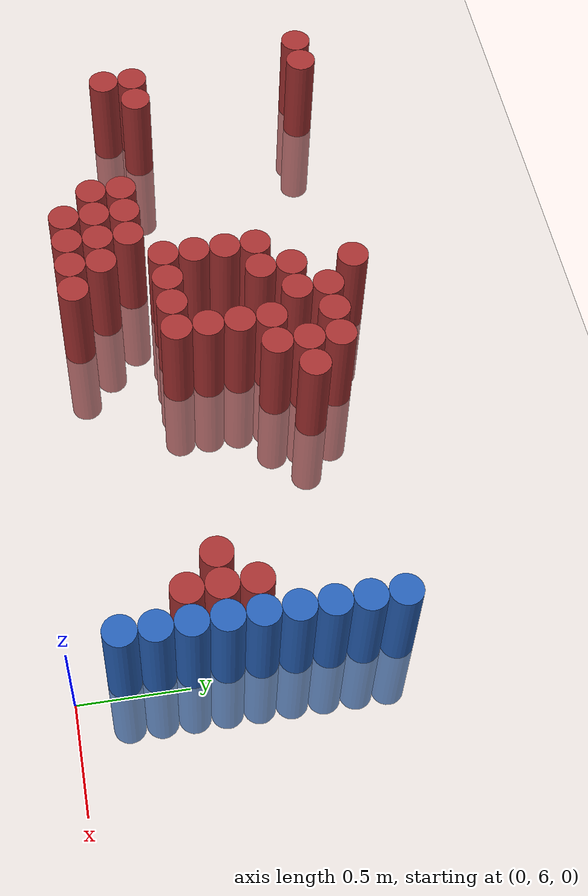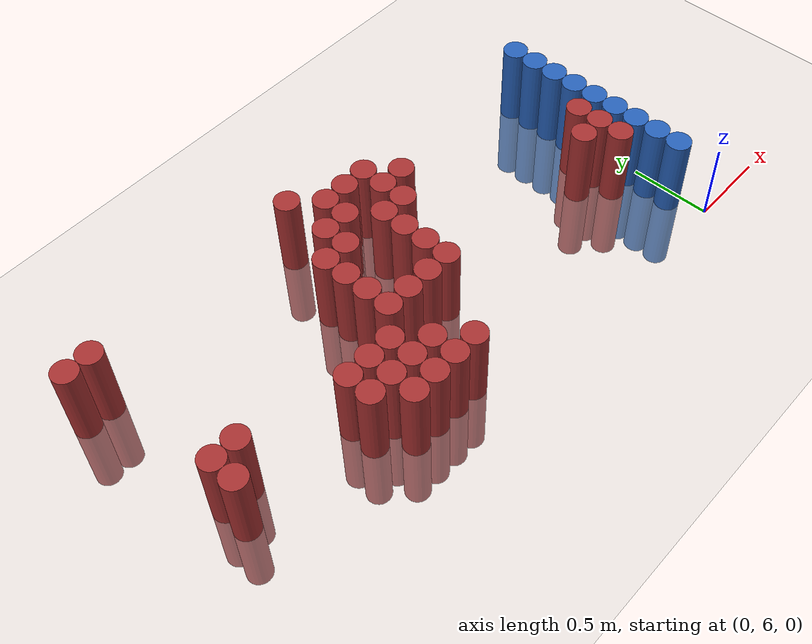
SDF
<sdf version="1.6">
 <world name="default">
  <model name="ground_plane">
   <static>1</static>
   <link name="link">
    <collision name="collision">
     <geometry><plane><normal>0 0 1</normal><size>100 100</size></plane></geometry>
     <surface><friction><ode><mu>100</mu><mu2>50</mu2></ode></friction></surface>
    </collision>
    <visual name="visual">
     <cast_shadows>0</cast_shadows>
     <geometry><plane><normal>0 0 1</normal><size>100 100</size></plane></geometry>
     <material>
      <script><uri>file://media/materials/scripts/gazebo.material</uri><name>Gazebo/Grey</name></script>
     </material>
    </visual>
   </link>
  </model>
  <model name="unit_cylinder_176">
   <static>1</static>
   <pose>-3.375000 7.575000 0.000000 0.000000 0.000000 0.000000</pose>
   <link name="link">
    <inertial>
     <mass>1</mass>
     <inertia><ixx>0.145833</ixx><ixy>0</ixy><ixz>0</ixz><iyy>0.145833</iyy><iyz>0</iyz><izz>0.125</izz></inertia>
    </inertial>
    <collision name="collision">
     <geometry><cylinder><radius>0.075000</radius><length>1</length></cylinder></geometry>
    </collision>
    <visual name="visual">
     <geometry><cylinder><radius>0.075000</radius><length>1</length></cylinder></geometry>
     <material>
      <ambient>0.648000 0.192000 0.192000 1</ambient>
      <diffuse>0.648000 0.192000 0.192000 1</diffuse>
     </material>
     <material>
      <script><name>Gazebo/Grey</name><uri>file://media/materials/scripts/gazebo.material</uri></script>
     </material>
    </visual>
   </link>
  </model>
  <model name="unit_cylinder_181">
   <static>1</static>
   <pose>-3.225000 6.525000 0.000000 0.000000 0.000000 0.000000</pose>
   <link name="link">
    <inertial>
     <mass>1</mass>
     <inertia><ixx>0.145833</ixx><ixy>0</ixy><ixz>0</ixz><iyy>0.145833</iyy><iyz>0</iyz><izz>0.125</izz></inertia>
    </inertial>
    <collision name="collision">
     <geometry><cylinder><radius>0.075000</radius><length>1</length></cylinder></geometry>
    </collision>
    <visual name="visual">
     <geometry><cylinder><radius>0.075000</radius><length>1</length></cylinder></geometry>
     <material>
      <ambient>0.648000 0.192000 0.192000 1</ambient>
      <diffuse>0.648000 0.192000 0.192000 1</diffuse>
     </material>
     <material>
      <script><name>Gazebo/Grey</name><uri>file://media/materials/scripts/gazebo.material</uri></script>
     </material>
    </visual>
   </link>
  </model>
  <model name="unit_cylinder_182">
   <static>1</static>
   <pose>-3.225000 6.675000 0.000000 0.000000 0.000000 0.000000</pose>
   <link name="link">
    <inertial>
     <mass>1</mass>
     <inertia><ixx>0.145833</ixx><ixy>0</ixy><ixz>0</ixz><iyy>0.145833</iyy><iyz>0</iyz><izz>0.125</izz></inertia>
    </inertial>
    <collision name="collision">
     <geometry><cylinder><radius>0.075000</radius><length>1</length></cylinder></geometry>
    </collision>
    <visual name="visual">
     <geometry><cylinder><radius>0.075000</radius><length>1</length></cylinder></geometry>
     <material>
      <ambient>0.648000 0.192000 0.192000 1</ambient>
      <diffuse>0.648000 0.192000 0.192000 1</diffuse>
     </material>
     <material>
      <script><name>Gazebo/Grey</name><uri>file://media/materials/scripts/gazebo.material</uri></script>
     </material>
    </visual>
   </link>
  </model>
  <model name="unit_cylinder_183">
   <static>1</static>
   <pose>-3.225000 7.575000 0.000000 0.000000 0.000000 0.000000</pose>
   <link name="link">
    <inertial>
     <mass>1</mass>
     <inertia><ixx>0.145833</ixx><ixy>0</ixy><ixz>0</ixz><iyy>0.145833</iyy><iyz>0</iyz><izz>0.125</izz></inertia>
    </inertial>
    <collision name="collision">
     <geometry><cylinder><radius>0.075000</radius><length>1</length></cylinder></geometry>
    </collision>
    <visual name="visual">
     <geometry><cylinder><radius>0.075000</radius><length>1</length></cylinder></geometry>
     <material>
      <ambient>0.648000 0.192000 0.192000 1</ambient>
      <diffuse>0.648000 0.192000 0.192000 1</diffuse>
     </material>
     <material>
      <script><name>Gazebo/Grey</name><uri>file://media/materials/scripts/gazebo.material</uri></script>
     </material>
    </visual>
   </link>
  </model>
  <model name="unit_cylinder_185">
   <static>1</static>
   <pose>-3.075000 6.675000 0.000000 0.000000 0.000000 0.000000</pose>
   <link name="link">
    <inertial>
     <mass>1</mass>
     <inertia><ixx>0.145833</ixx><ixy>0</ixy><ixz>0</ixz><iyy>0.145833</iyy><iyz>0</iyz><izz>0.125</izz></inertia>
    </inertial>
    <collision name="collision">
     <geometry><cylinder><radius>0.075000</radius><length>1</length></cylinder></geometry>
    </collision>
    <visual name="visual">
     <geometry><cylinder><radius>0.075000</radius><length>1</length></cylinder></geometry>
     <material>
      <ambient>0.648000 0.192000 0.192000 1</ambient>
      <diffuse>0.648000 0.192000 0.192000 1</diffuse>
     </material>
     <material>
      <script><name>Gazebo/Grey</name><uri>file://media/materials/scripts/gazebo.material</uri></script>
     </material>
    </visual>
   </link>
  </model>
  <model name="unit_cylinder_190">
   <static>1</static>
   <pose>-2.475000 6.375000 0.000000 0.000000 0.000000 0.000000</pose>
   <link name="link">
    <inertial>
     <mass>1</mass>
     <inertia><ixx>0.145833</ixx><ixy>0</ixy><ixz>0</ixz><iyy>0.145833</iyy><iyz>0</iyz><izz>0.125</izz></inertia>
    </inertial>
    <collision name="collision">
     <geometry><cylinder><radius>0.075000</radius><length>1</length></cylinder></geometry>
    </collision>
    <visual name="visual">
     <geometry><cylinder><radius>0.075000</radius><length>1</length></cylinder></geometry>
     <material>
      <ambient>0.648000 0.192000 0.192000 1</ambient>
      <diffuse>0.648000 0.192000 0.192000 1</diffuse>
     </material>
     <material>
      <script><name>Gazebo/Grey</name><uri>file://media/materials/scripts/gazebo.material</uri></script>
     </material>
    </visual>
   </link>
  </model>
  <model name="unit_cylinder_191">
   <static>1</static>
   <pose>-2.475000 6.525000 0.000000 0.000000 0.000000 0.000000</pose>
   <link name="link">
    <inertial>
     <mass>1</mass>
     <inertia><ixx>0.145833</ixx><ixy>0</ixy><ixz>0</ixz><iyy>0.145833</iyy><iyz>0</iyz><izz>0.125</izz></inertia>
    </inertial>
    <collision name="collision">
     <geometry><cylinder><radius>0.075000</radius><length>1</length></cylinder></geometry>
    </collision>
    <visual name="visual">
     <geometry><cylinder><radius>0.075000</radius><length>1</length></cylinder></geometry>
     <material>
      <ambient>0.648000 0.192000 0.192000 1</ambient>
      <diffuse>0.648000 0.192000 0.192000 1</diffuse>
     </material>
     <material>
      <script><name>Gazebo/Grey</name><uri>file://media/materials/scripts/gazebo.material</uri></script>
     </material>
    </visual>
   </link>
  </model>
  <model name="unit_cylinder_196">
   <static>1</static>
   <pose>-2.325000 6.225000 0.000000 0.000000 0.000000 0.000000</pose>
   <link name="link">
    <inertial>
     <mass>1</mass>
     <inertia><ixx>0.145833</ixx><ixy>0</ixy><ixz>0</ixz><iyy>0.145833</iyy><iyz>0</iyz><izz>0.125</izz></inertia>
    </inertial>
    <collision name="collision">
     <geometry><cylinder><radius>0.075000</radius><length>1</length></cylinder></geometry>
    </collision>
    <visual name="visual">
     <geometry><cylinder><radius>0.075000</radius><length>1</length></cylinder></geometry>
     <material>
      <ambient>0.648000 0.192000 0.192000 1</ambient>
      <diffuse>0.648000 0.192000 0.192000 1</diffuse>
     </material>
     <material>
      <script><name>Gazebo/Grey</name><uri>file://media/materials/scripts/gazebo.material</uri></script>
     </material>
    </visual>
   </link>
  </model>
  <model name="unit_cylinder_197">
   <static>1</static>
   <pose>-2.325000 6.375000 0.000000 0.000000 0.000000 0.000000</pose>
   <link name="link">
    <inertial>
     <mass>1</mass>
     <inertia><ixx>0.145833</ixx><ixy>0</ixy><ixz>0</ixz><iyy>0.145833</iyy><iyz>0</iyz><izz>0.125</izz></inertia>
    </inertial>
    <collision name="collision">
     <geometry><cylinder><radius>0.075000</radius><length>1</length></cylinder></geometry>
    </collision>
    <visual name="visual">
     <geometry><cylinder><radius>0.075000</radius><length>1</length></cylinder></geometry>
     <material>
      <ambient>0.648000 0.192000 0.192000 1</ambient>
      <diffuse>0.648000 0.192000 0.192000 1</diffuse>
     </material>
     <material>
      <script><name>Gazebo/Grey</name><uri>file://media/materials/scripts/gazebo.material</uri></script>
     </material>
    </visual>
   </link>
  </model>
  <model name="unit_cylinder_198">
   <static>1</static>
   <pose>-2.325000 6.525000 0.000000 0.000000 0.000000 0.000000</pose>
   <link name="link">
    <inertial>
     <mass>1</mass>
     <inertia><ixx>0.145833</ixx><ixy>0</ixy><ixz>0</ixz><iyy>0.145833</iyy><iyz>0</iyz><izz>0.125</izz></inertia>
    </inertial>
    <collision name="collision">
     <geometry><cylinder><radius>0.075000</radius><length>1</length></cylinder></geometry>
    </collision>
    <visual name="visual">
     <geometry><cylinder><radius>0.075000</radius><length>1</length></cylinder></geometry>
     <material>
      <ambient>0.648000 0.192000 0.192000 1</ambient>
      <diffuse>0.648000 0.192000 0.192000 1</diffuse>
     </material>
     <material>
      <script><name>Gazebo/Grey</name><uri>file://media/materials/scripts/gazebo.material</uri></script>
     </material>
    </visual>
   </link>
  </model>
  <model name="unit_cylinder_206">
   <static>1</static>
   <pose>-2.175000 6.225000 0.000000 0.000000 0.000000 0.000000</pose>
   <link name="link">
    <inertial>
     <mass>1</mass>
     <inertia><ixx>0.145833</ixx><ixy>0</ixy><ixz>0</ixz><iyy>0.145833</iyy><iyz>0</iyz><izz>0.125</izz></inertia>
    </inertial>
    <collision name="collision">
     <geometry><cylinder><radius>0.075000</radius><length>1</length></cylinder></geometry>
    </collision>
    <visual name="visual">
     <geometry><cylinder><radius>0.075000</radius><length>1</length></cylinder></geometry>
     <material>
      <ambient>0.648000 0.192000 0.192000 1</ambient>
      <diffuse>0.648000 0.192000 0.192000 1</diffuse>
     </material>
     <material>
      <script><name>Gazebo/Grey</name><uri>file://media/materials/scripts/gazebo.material</uri></script>
     </material>
    </visual>
   </link>
  </model>
  <model name="unit_cylinder_207">
   <static>1</static>
   <pose>-2.175000 6.375000 0.000000 0.000000 0.000000 0.000000</pose>
   <link name="link">
    <inertial>
     <mass>1</mass>
     <inertia><ixx>0.145833</ixx><ixy>0</ixy><ixz>0</ixz><iyy>0.145833</iyy><iyz>0</iyz><izz>0.125</izz></inertia>
    </inertial>
    <collision name="collision">
     <geometry><cylinder><radius>0.075000</radius><length>1</length></cylinder></geometry>
    </collision>
    <visual name="visual">
     <geometry><cylinder><radius>0.075000</radius><length>1</length></cylinder></geometry>
     <material>
      <ambient>0.648000 0.192000 0.192000 1</ambient>
      <diffuse>0.648000 0.192000 0.192000 1</diffuse>
     </material>
     <material>
      <script><name>Gazebo/Grey</name><uri>file://media/materials/scripts/gazebo.material</uri></script>
     </material>
    </visual>
   </link>
  </model>
  <model name="unit_cylinder_208">
   <static>1</static>
   <pose>-2.175000 6.525000 0.000000 0.000000 0.000000 0.000000</pose>
   <link name="link">
    <inertial>
     <mass>1</mass>
     <inertia><ixx>0.145833</ixx><ixy>0</ixy><ixz>0</ixz><iyy>0.145833</iyy><iyz>0</iyz><izz>0.125</izz></inertia>
    </inertial>
    <collision name="collision">
     <geometry><cylinder><radius>0.075000</radius><length>1</length></cylinder></geometry>
    </collision>
    <visual name="visual">
     <geometry><cylinder><radius>0.075000</radius><length>1</length></cylinder></geometry>
     <material>
      <ambient>0.648000 0.192000 0.192000 1</ambient>
      <diffuse>0.648000 0.192000 0.192000 1</diffuse>
     </material>
     <material>
      <script><name>Gazebo/Grey</name><uri>file://media/materials/scripts/gazebo.material</uri></script>
     </material>
    </visual>
   </link>
  </model>
  <model name="unit_cylinder_213">
   <static>1</static>
   <pose>-2.025000 6.225000 0.000000 0.000000 0.000000 0.000000</pose>
   <link name="link">
    <inertial>
     <mass>1</mass>
     <inertia><ixx>0.145833</ixx><ixy>0</ixy><ixz>0</ixz><iyy>0.145833</iyy><iyz>0</iyz><izz>0.125</izz></inertia>
    </inertial>
    <collision name="collision">
     <geometry><cylinder><radius>0.075000</radius><length>1</length></cylinder></geometry>
    </collision>
    <visual name="visual">
     <geometry><cylinder><radius>0.075000</radius><length>1</length></cylinder></geometry>
     <material>
      <ambient>0.648000 0.192000 0.192000 1</ambient>
      <diffuse>0.648000 0.192000 0.192000 1</diffuse>
     </material>
     <material>
      <script><name>Gazebo/Grey</name><uri>file://media/materials/scripts/gazebo.material</uri></script>
     </material>
    </visual>
   </link>
  </model>
  <model name="unit_cylinder_214">
   <static>1</static>
   <pose>-2.025000 6.375000 0.000000 0.000000 0.000000 0.000000</pose>
   <link name="link">
    <inertial>
     <mass>1</mass>
     <inertia><ixx>0.145833</ixx><ixy>0</ixy><ixz>0</ixz><iyy>0.145833</iyy><iyz>0</iyz><izz>0.125</izz></inertia>
    </inertial>
    <collision name="collision">
     <geometry><cylinder><radius>0.075000</radius><length>1</length></cylinder></geometry>
    </collision>
    <visual name="visual">
     <geometry><cylinder><radius>0.075000</radius><length>1</length></cylinder></geometry>
     <material>
      <ambient>0.648000 0.192000 0.192000 1</ambient>
      <diffuse>0.648000 0.192000 0.192000 1</diffuse>
     </material>
     <material>
      <script><name>Gazebo/Grey</name><uri>file://media/materials/scripts/gazebo.material</uri></script>
     </material>
    </visual>
   </link>
  </model>
  <model name="unit_cylinder_215">
   <static>1</static>
   <pose>-2.025000 6.675000 0.000000 0.000000 0.000000 0.000000</pose>
   <link name="link">
    <inertial>
     <mass>1</mass>
     <inertia><ixx>0.145833</ixx><ixy>0</ixy><ixz>0</ixz><iyy>0.145833</iyy><iyz>0</iyz><izz>0.125</izz></inertia>
    </inertial>
    <collision name="collision">
     <geometry><cylinder><radius>0.075000</radius><length>1</length></cylinder></geometry>
    </collision>
    <visual name="visual">
     <geometry><cylinder><radius>0.075000</radius><length>1</length></cylinder></geometry>
     <material>
      <ambient>0.648000 0.192000 0.192000 1</ambient>
      <diffuse>0.648000 0.192000 0.192000 1</diffuse>
     </material>
     <material>
      <script><name>Gazebo/Grey</name><uri>file://media/materials/scripts/gazebo.material</uri></script>
     </material>
    </visual>
   </link>
  </model>
  <model name="unit_cylinder_216">
   <static>1</static>
   <pose>-2.025000 6.825000 0.000000 0.000000 0.000000 0.000000</pose>
   <link name="link">
    <inertial>
     <mass>1</mass>
     <inertia><ixx>0.145833</ixx><ixy>0</ixy><ixz>0</ixz><iyy>0.145833</iyy><iyz>0</iyz><izz>0.125</izz></inertia>
    </inertial>
    <collision name="collision">
     <geometry><cylinder><radius>0.075000</radius><length>1</length></cylinder></geometry>
    </collision>
    <visual name="visual">
     <geometry><cylinder><radius>0.075000</radius><length>1</length></cylinder></geometry>
     <material>
      <ambient>0.648000 0.192000 0.192000 1</ambient>
      <diffuse>0.648000 0.192000 0.192000 1</diffuse>
     </material>
     <material>
      <script><name>Gazebo/Grey</name><uri>file://media/materials/scripts/gazebo.material</uri></script>
     </material>
    </visual>
   </link>
  </model>
  <model name="unit_cylinder_217">
   <static>1</static>
   <pose>-2.025000 6.975000 0.000000 0.000000 0.000000 0.000000</pose>
   <link name="link">
    <inertial>
     <mass>1</mass>
     <inertia><ixx>0.145833</ixx><ixy>0</ixy><ixz>0</ixz><iyy>0.145833</iyy><iyz>0</iyz><izz>0.125</izz></inertia>
    </inertial>
    <collision name="collision">
     <geometry><cylinder><radius>0.075000</radius><length>1</length></cylinder></geometry>
    </collision>
    <visual name="visual">
     <geometry><cylinder><radius>0.075000</radius><length>1</length></cylinder></geometry>
     <material>
      <ambient>0.648000 0.192000 0.192000 1</ambient>
      <diffuse>0.648000 0.192000 0.192000 1</diffuse>
     </material>
     <material>
      <script><name>Gazebo/Grey</name><uri>file://media/materials/scripts/gazebo.material</uri></script>
     </material>
    </visual>
   </link>
  </model>
  <model name="unit_cylinder_218">
   <static>1</static>
   <pose>-2.025000 7.125000 0.000000 0.000000 0.000000 0.000000</pose>
   <link name="link">
    <inertial>
     <mass>1</mass>
     <inertia><ixx>0.145833</ixx><ixy>0</ixy><ixz>0</ixz><iyy>0.145833</iyy><iyz>0</iyz><izz>0.125</izz></inertia>
    </inertial>
    <collision name="collision">
     <geometry><cylinder><radius>0.075000</radius><length>1</length></cylinder></geometry>
    </collision>
    <visual name="visual">
     <geometry><cylinder><radius>0.075000</radius><length>1</length></cylinder></geometry>
     <material>
      <ambient>0.648000 0.192000 0.192000 1</ambient>
      <diffuse>0.648000 0.192000 0.192000 1</diffuse>
     </material>
     <material>
      <script><name>Gazebo/Grey</name><uri>file://media/materials/scripts/gazebo.material</uri></script>
     </material>
    </visual>
   </link>
  </model>
  <model name="unit_cylinder_221">
   <static>1</static>
   <pose>-1.875000 6.225000 0.000000 0.000000 0.000000 0.000000</pose>
   <link name="link">
    <inertial>
     <mass>1</mass>
     <inertia><ixx>0.145833</ixx><ixy>0</ixy><ixz>0</ixz><iyy>0.145833</iyy><iyz>0</iyz><izz>0.125</izz></inertia>
    </inertial>
    <collision name="collision">
     <geometry><cylinder><radius>0.075000</radius><length>1</length></cylinder></geometry>
    </collision>
    <visual name="visual">
     <geometry><cylinder><radius>0.075000</radius><length>1</length></cylinder></geometry>
     <material>
      <ambient>0.648000 0.192000 0.192000 1</ambient>
      <diffuse>0.648000 0.192000 0.192000 1</diffuse>
     </material>
     <material>
      <script><name>Gazebo/Grey</name><uri>file://media/materials/scripts/gazebo.material</uri></script>
     </material>
    </visual>
   </link>
  </model>
  <model name="unit_cylinder_222">
   <static>1</static>
   <pose>-1.875000 6.675000 0.000000 0.000000 0.000000 0.000000</pose>
   <link name="link">
    <inertial>
     <mass>1</mass>
     <inertia><ixx>0.145833</ixx><ixy>0</ixy><ixz>0</ixz><iyy>0.145833</iyy><iyz>0</iyz><izz>0.125</izz></inertia>
    </inertial>
    <collision name="collision">
     <geometry><cylinder><radius>0.075000</radius><length>1</length></cylinder></geometry>
    </collision>
    <visual name="visual">
     <geometry><cylinder><radius>0.075000</radius><length>1</length></cylinder></geometry>
     <material>
      <ambient>0.648000 0.192000 0.192000 1</ambient>
      <diffuse>0.648000 0.192000 0.192000 1</diffuse>
     </material>
     <material>
      <script><name>Gazebo/Grey</name><uri>file://media/materials/scripts/gazebo.material</uri></script>
     </material>
    </visual>
   </link>
  </model>
  <model name="unit_cylinder_223">
   <static>1</static>
   <pose>-1.875000 7.125000 0.000000 0.000000 0.000000 0.000000</pose>
   <link name="link">
    <inertial>
     <mass>1</mass>
     <inertia><ixx>0.145833</ixx><ixy>0</ixy><ixz>0</ixz><iyy>0.145833</iyy><iyz>0</iyz><izz>0.125</izz></inertia>
    </inertial>
    <collision name="collision">
     <geometry><cylinder><radius>0.075000</radius><length>1</length></cylinder></geometry>
    </collision>
    <visual name="visual">
     <geometry><cylinder><radius>0.075000</radius><length>1</length></cylinder></geometry>
     <material>
      <ambient>0.648000 0.192000 0.192000 1</ambient>
      <diffuse>0.648000 0.192000 0.192000 1</diffuse>
     </material>
     <material>
      <script><name>Gazebo/Grey</name><uri>file://media/materials/scripts/gazebo.material</uri></script>
     </material>
    </visual>
   </link>
  </model>
  <model name="unit_cylinder_224">
   <static>1</static>
   <pose>-1.875000 7.275000 0.000000 0.000000 0.000000 0.000000</pose>
   <link name="link">
    <inertial>
     <mass>1</mass>
     <inertia><ixx>0.145833</ixx><ixy>0</ixy><ixz>0</ixz><iyy>0.145833</iyy><iyz>0</iyz><izz>0.125</izz></inertia>
    </inertial>
    <collision name="collision">
     <geometry><cylinder><radius>0.075000</radius><length>1</length></cylinder></geometry>
    </collision>
    <visual name="visual">
     <geometry><cylinder><radius>0.075000</radius><length>1</length></cylinder></geometry>
     <material>
      <ambient>0.648000 0.192000 0.192000 1</ambient>
      <diffuse>0.648000 0.192000 0.192000 1</diffuse>
     </material>
     <material>
      <script><name>Gazebo/Grey</name><uri>file://media/materials/scripts/gazebo.material</uri></script>
     </material>
    </visual>
   </link>
  </model>
  <model name="unit_cylinder_225">
   <static>1</static>
   <pose>-1.875000 7.575000 0.000000 0.000000 0.000000 0.000000</pose>
   <link name="link">
    <inertial>
     <mass>1</mass>
     <inertia><ixx>0.145833</ixx><ixy>0</ixy><ixz>0</ixz><iyy>0.145833</iyy><iyz>0</iyz><izz>0.125</izz></inertia>
    </inertial>
    <collision name="collision">
     <geometry><cylinder><radius>0.075000</radius><length>1</length></cylinder></geometry>
    </collision>
    <visual name="visual">
     <geometry><cylinder><radius>0.075000</radius><length>1</length></cylinder></geometry>
     <material>
      <ambient>0.648000 0.192000 0.192000 1</ambient>
      <diffuse>0.648000 0.192000 0.192000 1</diffuse>
     </material>
     <material>
      <script><name>Gazebo/Grey</name><uri>file://media/materials/scripts/gazebo.material</uri></script>
     </material>
    </visual>
   </link>
  </model>
  <model name="unit_cylinder_226">
   <static>1</static>
   <pose>-1.725000 6.675000 0.000000 0.000000 0.000000 0.000000</pose>
   <link name="link">
    <inertial>
     <mass>1</mass>
     <inertia><ixx>0.145833</ixx><ixy>0</ixy><ixz>0</ixz><iyy>0.145833</iyy><iyz>0</iyz><izz>0.125</izz></inertia>
    </inertial>
    <collision name="collision">
     <geometry><cylinder><radius>0.075000</radius><length>1</length></cylinder></geometry>
    </collision>
    <visual name="visual">
     <geometry><cylinder><radius>0.075000</radius><length>1</length></cylinder></geometry>
     <material>
      <ambient>0.648000 0.192000 0.192000 1</ambient>
      <diffuse>0.648000 0.192000 0.192000 1</diffuse>
     </material>
     <material>
      <script><name>Gazebo/Grey</name><uri>file://media/materials/scripts/gazebo.material</uri></script>
     </material>
    </visual>
   </link>
  </model>
  <model name="unit_cylinder_227">
   <static>1</static>
   <pose>-1.725000 7.275000 0.000000 0.000000 0.000000 0.000000</pose>
   <link name="link">
    <inertial>
     <mass>1</mass>
     <inertia><ixx>0.145833</ixx><ixy>0</ixy><ixz>0</ixz><iyy>0.145833</iyy><iyz>0</iyz><izz>0.125</izz></inertia>
    </inertial>
    <collision name="collision">
     <geometry><cylinder><radius>0.075000</radius><length>1</length></cylinder></geometry>
    </collision>
    <visual name="visual">
     <geometry><cylinder><radius>0.075000</radius><length>1</length></cylinder></geometry>
     <material>
      <ambient>0.648000 0.192000 0.192000 1</ambient>
      <diffuse>0.648000 0.192000 0.192000 1</diffuse>
     </material>
     <material>
      <script><name>Gazebo/Grey</name><uri>file://media/materials/scripts/gazebo.material</uri></script>
     </material>
    </visual>
   </link>
  </model>
  <model name="unit_cylinder_228">
   <static>1</static>
   <pose>-1.725000 7.425000 0.000000 0.000000 0.000000 0.000000</pose>
   <link name="link">
    <inertial>
     <mass>1</mass>
     <inertia><ixx>0.145833</ixx><ixy>0</ixy><ixz>0</ixz><iyy>0.145833</iyy><iyz>0</iyz><izz>0.125</izz></inertia>
    </inertial>
    <collision name="collision">
     <geometry><cylinder><radius>0.075000</radius><length>1</length></cylinder></geometry>
    </collision>
    <visual name="visual">
     <geometry><cylinder><radius>0.075000</radius><length>1</length></cylinder></geometry>
     <material>
      <ambient>0.648000 0.192000 0.192000 1</ambient>
      <diffuse>0.648000 0.192000 0.192000 1</diffuse>
     </material>
     <material>
      <script><name>Gazebo/Grey</name><uri>file://media/materials/scripts/gazebo.material</uri></script>
     </material>
    </visual>
   </link>
  </model>
  <model name="unit_cylinder_229">
   <static>1</static>
   <pose>-1.575000 6.675000 0.000000 0.000000 0.000000 0.000000</pose>
   <link name="link">
    <inertial>
     <mass>1</mass>
     <inertia><ixx>0.145833</ixx><ixy>0</ixy><ixz>0</ixz><iyy>0.145833</iyy><iyz>0</iyz><izz>0.125</izz></inertia>
    </inertial>
    <collision name="collision">
     <geometry><cylinder><radius>0.075000</radius><length>1</length></cylinder></geometry>
    </collision>
    <visual name="visual">
     <geometry><cylinder><radius>0.075000</radius><length>1</length></cylinder></geometry>
     <material>
      <ambient>0.648000 0.192000 0.192000 1</ambient>
      <diffuse>0.648000 0.192000 0.192000 1</diffuse>
     </material>
     <material>
      <script><name>Gazebo/Grey</name><uri>file://media/materials/scripts/gazebo.material</uri></script>
     </material>
    </visual>
   </link>
  </model>
  <model name="unit_cylinder_230">
   <static>1</static>
   <pose>-1.575000 6.825000 0.000000 0.000000 0.000000 0.000000</pose>
   <link name="link">
    <inertial>
     <mass>1</mass>
     <inertia><ixx>0.145833</ixx><ixy>0</ixy><ixz>0</ixz><iyy>0.145833</iyy><iyz>0</iyz><izz>0.125</izz></inertia>
    </inertial>
    <collision name="collision">
     <geometry><cylinder><radius>0.075000</radius><length>1</length></cylinder></geometry>
    </collision>
    <visual name="visual">
     <geometry><cylinder><radius>0.075000</radius><length>1</length></cylinder></geometry>
     <material>
      <ambient>0.648000 0.192000 0.192000 1</ambient>
      <diffuse>0.648000 0.192000 0.192000 1</diffuse>
     </material>
     <material>
      <script><name>Gazebo/Grey</name><uri>file://media/materials/scripts/gazebo.material</uri></script>
     </material>
    </visual>
   </link>
  </model>
  <model name="unit_cylinder_231">
   <static>1</static>
   <pose>-1.575000 6.975000 0.000000 0.000000 0.000000 0.000000</pose>
   <link name="link">
    <inertial>
     <mass>1</mass>
     <inertia><ixx>0.145833</ixx><ixy>0</ixy><ixz>0</ixz><iyy>0.145833</iyy><iyz>0</iyz><izz>0.125</izz></inertia>
    </inertial>
    <collision name="collision">
     <geometry><cylinder><radius>0.075000</radius><length>1</length></cylinder></geometry>
    </collision>
    <visual name="visual">
     <geometry><cylinder><radius>0.075000</radius><length>1</length></cylinder></geometry>
     <material>
      <ambient>0.648000 0.192000 0.192000 1</ambient>
      <diffuse>0.648000 0.192000 0.192000 1</diffuse>
     </material>
     <material>
      <script><name>Gazebo/Grey</name><uri>file://media/materials/scripts/gazebo.material</uri></script>
     </material>
    </visual>
   </link>
  </model>
  <model name="unit_cylinder_232">
   <static>1</static>
   <pose>-1.575000 7.125000 0.000000 0.000000 0.000000 0.000000</pose>
   <link name="link">
    <inertial>
     <mass>1</mass>
     <inertia><ixx>0.145833</ixx><ixy>0</ixy><ixz>0</ixz><iyy>0.145833</iyy><iyz>0</iyz><izz>0.125</izz></inertia>
    </inertial>
    <collision name="collision">
     <geometry><cylinder><radius>0.075000</radius><length>1</length></cylinder></geometry>
    </collision>
    <visual name="visual">
     <geometry><cylinder><radius>0.075000</radius><length>1</length></cylinder></geometry>
     <material>
      <ambient>0.648000 0.192000 0.192000 1</ambient>
      <diffuse>0.648000 0.192000 0.192000 1</diffuse>
     </material>
     <material>
      <script><name>Gazebo/Grey</name><uri>file://media/materials/scripts/gazebo.material</uri></script>
     </material>
    </visual>
   </link>
  </model>
  <model name="unit_cylinder_233">
   <static>1</static>
   <pose>-1.575000 7.425000 0.000000 0.000000 0.000000 0.000000</pose>
   <link name="link">
    <inertial>
     <mass>1</mass>
     <inertia><ixx>0.145833</ixx><ixy>0</ixy><ixz>0</ixz><iyy>0.145833</iyy><iyz>0</iyz><izz>0.125</izz></inertia>
    </inertial>
    <collision name="collision">
     <geometry><cylinder><radius>0.075000</radius><length>1</length></cylinder></geometry>
    </collision>
    <visual name="visual">
     <geometry><cylinder><radius>0.075000</radius><length>1</length></cylinder></geometry>
     <material>
      <ambient>0.648000 0.192000 0.192000 1</ambient>
      <diffuse>0.648000 0.192000 0.192000 1</diffuse>
     </material>
     <material>
      <script><name>Gazebo/Grey</name><uri>file://media/materials/scripts/gazebo.material</uri></script>
     </material>
    </visual>
   </link>
  </model>
  <model name="unit_cylinder_234">
   <static>1</static>
   <pose>-1.425000 7.125000 0.000000 0.000000 0.000000 0.000000</pose>
   <link name="link">
    <inertial>
     <mass>1</mass>
     <inertia><ixx>0.145833</ixx><ixy>0</ixy><ixz>0</ixz><iyy>0.145833</iyy><iyz>0</iyz><izz>0.125</izz></inertia>
    </inertial>
    <collision name="collision">
     <geometry><cylinder><radius>0.075000</radius><length>1</length></cylinder></geometry>
    </collision>
    <visual name="visual">
     <geometry><cylinder><radius>0.075000</radius><length>1</length></cylinder></geometry>
     <material>
      <ambient>0.648000 0.192000 0.192000 1</ambient>
      <diffuse>0.648000 0.192000 0.192000 1</diffuse>
     </material>
     <material>
      <script><name>Gazebo/Grey</name><uri>file://media/materials/scripts/gazebo.material</uri></script>
     </material>
    </visual>
   </link>
  </model>
  <model name="unit_cylinder_235">
   <static>1</static>
   <pose>-1.425000 7.275000 0.000000 0.000000 0.000000 0.000000</pose>
   <link name="link">
    <inertial>
     <mass>1</mass>
     <inertia><ixx>0.145833</ixx><ixy>0</ixy><ixz>0</ixz><iyy>0.145833</iyy><iyz>0</iyz><izz>0.125</izz></inertia>
    </inertial>
    <collision name="collision">
     <geometry><cylinder><radius>0.075000</radius><length>1</length></cylinder></geometry>
    </collision>
    <visual name="visual">
     <geometry><cylinder><radius>0.075000</radius><length>1</length></cylinder></geometry>
     <material>
      <ambient>0.648000 0.192000 0.192000 1</ambient>
      <diffuse>0.648000 0.192000 0.192000 1</diffuse>
     </material>
     <material>
      <script><name>Gazebo/Grey</name><uri>file://media/materials/scripts/gazebo.material</uri></script>
     </material>
    </visual>
   </link>
  </model>
  <model name="unit_cylinder_236">
   <static>1</static>
   <pose>-1.425000 7.425000 0.000000 0.000000 0.000000 0.000000</pose>
   <link name="link">
    <inertial>
     <mass>1</mass>
     <inertia><ixx>0.145833</ixx><ixy>0</ixy><ixz>0</ixz><iyy>0.145833</iyy><iyz>0</iyz><izz>0.125</izz></inertia>
    </inertial>
    <collision name="collision">
     <geometry><cylinder><radius>0.075000</radius><length>1</length></cylinder></geometry>
    </collision>
    <visual name="visual">
     <geometry><cylinder><radius>0.075000</radius><length>1</length></cylinder></geometry>
     <material>
      <ambient>0.648000 0.192000 0.192000 1</ambient>
      <diffuse>0.648000 0.192000 0.192000 1</diffuse>
     </material>
     <material>
      <script><name>Gazebo/Grey</name><uri>file://media/materials/scripts/gazebo.material</uri></script>
     </material>
    </visual>
   </link>
  </model>
  <model name="unit_cylinder_237">
   <static>1</static>
   <pose>-1.275000 7.275000 0.000000 0.000000 0.000000 0.000000</pose>
   <link name="link">
    <inertial>
     <mass>1</mass>
     <inertia><ixx>0.145833</ixx><ixy>0</ixy><ixz>0</ixz><iyy>0.145833</iyy><iyz>0</iyz><izz>0.125</izz></inertia>
    </inertial>
    <collision name="collision">
     <geometry><cylinder><radius>0.075000</radius><length>1</length></cylinder></geometry>
    </collision>
    <visual name="visual">
     <geometry><cylinder><radius>0.075000</radius><length>1</length></cylinder></geometry>
     <material>
      <ambient>0.648000 0.192000 0.192000 1</ambient>
      <diffuse>0.648000 0.192000 0.192000 1</diffuse>
     </material>
     <material>
      <script><name>Gazebo/Grey</name><uri>file://media/materials/scripts/gazebo.material</uri></script>
     </material>
    </visual>
   </link>
  </model>
  <model name="unit_cylinder_243">
   <static>1</static>
   <pose>-0.375000 6.675000 0.000000 0.000000 0.000000 0.000000</pose>
   <link name="link">
    <inertial>
     <mass>1</mass>
     <inertia><ixx>0.145833</ixx><ixy>0</ixy><ixz>0</ixz><iyy>0.145833</iyy><iyz>0</iyz><izz>0.125</izz></inertia>
    </inertial>
    <collision name="collision">
     <geometry><cylinder><radius>0.075000</radius><length>1</length></cylinder></geometry>
    </collision>
    <visual name="visual">
     <geometry><cylinder><radius>0.075000</radius><length>1</length></cylinder></geometry>
     <material>
      <ambient>0.648000 0.192000 0.192000 1</ambient>
      <diffuse>0.648000 0.192000 0.192000 1</diffuse>
     </material>
     <material>
      <script><name>Gazebo/Grey</name><uri>file://media/materials/scripts/gazebo.material</uri></script>
     </material>
    </visual>
   </link>
  </model>
  <model name="unit_cylinder_252">
   <static>1</static>
   <pose>-0.225000 6.525000 0.000000 0.000000 0.000000 0.000000</pose>
   <link name="link">
    <inertial>
     <mass>1</mass>
     <inertia><ixx>0.145833</ixx><ixy>0</ixy><ixz>0</ixz><iyy>0.145833</iyy><iyz>0</iyz><izz>0.125</izz></inertia>
    </inertial>
    <collision name="collision">
     <geometry><cylinder><radius>0.075000</radius><length>1</length></cylinder></geometry>
    </collision>
    <visual name="visual">
     <geometry><cylinder><radius>0.075000</radius><length>1</length></cylinder></geometry>
     <material>
      <ambient>0.648000 0.192000 0.192000 1</ambient>
      <diffuse>0.648000 0.192000 0.192000 1</diffuse>
     </material>
     <material>
      <script><name>Gazebo/Grey</name><uri>file://media/materials/scripts/gazebo.material</uri></script>
     </material>
    </visual>
   </link>
  </model>
  <model name="unit_cylinder_253">
   <static>1</static>
   <pose>-0.225000 6.675000 0.000000 0.000000 0.000000 0.000000</pose>
   <link name="link">
    <inertial>
     <mass>1</mass>
     <inertia><ixx>0.145833</ixx><ixy>0</ixy><ixz>0</ixz><iyy>0.145833</iyy><iyz>0</iyz><izz>0.125</izz></inertia>
    </inertial>
    <collision name="collision">
     <geometry><cylinder><radius>0.075000</radius><length>1</length></cylinder></geometry>
    </collision>
    <visual name="visual">
     <geometry><cylinder><radius>0.075000</radius><length>1</length></cylinder></geometry>
     <material>
      <ambient>0.648000 0.192000 0.192000 1</ambient>
      <diffuse>0.648000 0.192000 0.192000 1</diffuse>
     </material>
     <material>
      <script><name>Gazebo/Grey</name><uri>file://media/materials/scripts/gazebo.material</uri></script>
     </material>
    </visual>
   </link>
  </model>
  <model name="unit_cylinder_254">
   <static>1</static>
   <pose>-0.225000 6.825000 0.000000 0.000000 0.000000 0.000000</pose>
   <link name="link">
    <inertial>
     <mass>1</mass>
     <inertia><ixx>0.145833</ixx><ixy>0</ixy><ixz>0</ixz><iyy>0.145833</iyy><iyz>0</iyz><izz>0.125</izz></inertia>
    </inertial>
    <collision name="collision">
     <geometry><cylinder><radius>0.075000</radius><length>1</length></cylinder></geometry>
    </collision>
    <visual name="visual">
     <geometry><cylinder><radius>0.075000</radius><length>1</length></cylinder></geometry>
     <material>
      <ambient>0.648000 0.192000 0.192000 1</ambient>
      <diffuse>0.648000 0.192000 0.192000 1</diffuse>
     </material>
     <material>
      <script><name>Gazebo/Grey</name><uri>file://media/materials/scripts/gazebo.material</uri></script>
     </material>
    </visual>
   </link>
  </model>
  <model name="unit_cylinder_271">
   <static>1</static>
   <pose>-0.075000 6.225000 0.000000 0.000000 0.000000 0.000000</pose>
   <link name="link">
    <inertial>
     <mass>1</mass>
     <inertia><ixx>0.145833</ixx><ixy>0</ixy><ixz>0</ixz><iyy>0.145833</iyy><iyz>0</iyz><izz>0.125</izz></inertia>
    </inertial>
    <collision name="collision">
     <geometry><cylinder><radius>0.075000</radius><length>1</length></cylinder></geometry>
    </collision>
    <visual name="visual">
     <geometry><cylinder><radius>0.075000</radius><length>1</length></cylinder></geometry>
     <material>
      <ambient>0.152000 0.379000 0.720000 1</ambient>
      <diffuse>0.152000 0.379000 0.720000 1</diffuse>
     </material>
     <material>
      <script><name>Gazebo/Grey</name><uri>file://media/materials/scripts/gazebo.material</uri></script>
     </material>
    </visual>
   </link>
  </model>
  <model name="unit_cylinder_272">
   <static>1</static>
   <pose>-0.075000 6.375000 0.000000 0.000000 0.000000 0.000000</pose>
   <link name="link">
    <inertial>
     <mass>1</mass>
     <inertia><ixx>0.145833</ixx><ixy>0</ixy><ixz>0</ixz><iyy>0.145833</iyy><iyz>0</iyz><izz>0.125</izz></inertia>
    </inertial>
    <collision name="collision">
     <geometry><cylinder><radius>0.075000</radius><length>1</length></cylinder></geometry>
    </collision>
    <visual name="visual">
     <geometry><cylinder><radius>0.075000</radius><length>1</length></cylinder></geometry>
     <material>
      <ambient>0.152000 0.379000 0.720000 1</ambient>
      <diffuse>0.152000 0.379000 0.720000 1</diffuse>
     </material>
     <material>
      <script><name>Gazebo/Grey</name><uri>file://media/materials/scripts/gazebo.material</uri></script>
     </material>
    </visual>
   </link>
  </model>
  <model name="unit_cylinder_273">
   <static>1</static>
   <pose>-0.075000 6.525000 0.000000 0.000000 0.000000 0.000000</pose>
   <link name="link">
    <inertial>
     <mass>1</mass>
     <inertia><ixx>0.145833</ixx><ixy>0</ixy><ixz>0</ixz><iyy>0.145833</iyy><iyz>0</iyz><izz>0.125</izz></inertia>
    </inertial>
    <collision name="collision">
     <geometry><cylinder><radius>0.075000</radius><length>1</length></cylinder></geometry>
    </collision>
    <visual name="visual">
     <geometry><cylinder><radius>0.075000</radius><length>1</length></cylinder></geometry>
     <material>
      <ambient>0.152000 0.379000 0.720000 1</ambient>
      <diffuse>0.152000 0.379000 0.720000 1</diffuse>
     </material>
     <material>
      <script><name>Gazebo/Grey</name><uri>file://media/materials/scripts/gazebo.material</uri></script>
     </material>
    </visual>
   </link>
  </model>
  <model name="unit_cylinder_274">
   <static>1</static>
   <pose>-0.075000 6.675000 0.000000 0.000000 0.000000 0.000000</pose>
   <link name="link">
    <inertial>
     <mass>1</mass>
     <inertia><ixx>0.145833</ixx><ixy>0</ixy><ixz>0</ixz><iyy>0.145833</iyy><iyz>0</iyz><izz>0.125</izz></inertia>
    </inertial>
    <collision name="collision">
     <geometry><cylinder><radius>0.075000</radius><length>1</length></cylinder></geometry>
    </collision>
    <visual name="visual">
     <geometry><cylinder><radius>0.075000</radius><length>1</length></cylinder></geometry>
     <material>
      <ambient>0.152000 0.379000 0.720000 1</ambient>
      <diffuse>0.152000 0.379000 0.720000 1</diffuse>
     </material>
     <material>
      <script><name>Gazebo/Grey</name><uri>file://media/materials/scripts/gazebo.material</uri></script>
     </material>
    </visual>
   </link>
  </model>
  <model name="unit_cylinder_275">
   <static>1</static>
   <pose>-0.075000 6.825000 0.000000 0.000000 0.000000 0.000000</pose>
   <link name="link">
    <inertial>
     <mass>1</mass>
     <inertia><ixx>0.145833</ixx><ixy>0</ixy><ixz>0</ixz><iyy>0.145833</iyy><iyz>0</iyz><izz>0.125</izz></inertia>
    </inertial>
    <collision name="collision">
     <geometry><cylinder><radius>0.075000</radius><length>1</length></cylinder></geometry>
    </collision>
    <visual name="visual">
     <geometry><cylinder><radius>0.075000</radius><length>1</length></cylinder></geometry>
     <material>
      <ambient>0.152000 0.379000 0.720000 1</ambient>
      <diffuse>0.152000 0.379000 0.720000 1</diffuse>
     </material>
     <material>
      <script><name>Gazebo/Grey</name><uri>file://media/materials/scripts/gazebo.material</uri></script>
     </material>
    </visual>
   </link>
  </model>
  <model name="unit_cylinder_276">
   <static>1</static>
   <pose>-0.075000 6.975000 0.000000 0.000000 0.000000 0.000000</pose>
   <link name="link">
    <inertial>
     <mass>1</mass>
     <inertia><ixx>0.145833</ixx><ixy>0</ixy><ixz>0</ixz><iyy>0.145833</iyy><iyz>0</iyz><izz>0.125</izz></inertia>
    </inertial>
    <collision name="collision">
     <geometry><cylinder><radius>0.075000</radius><length>1</length></cylinder></geometry>
    </collision>
    <visual name="visual">
     <geometry><cylinder><radius>0.075000</radius><length>1</length></cylinder></geometry>
     <material>
      <ambient>0.152000 0.379000 0.720000 1</ambient>
      <diffuse>0.152000 0.379000 0.720000 1</diffuse>
     </material>
     <material>
      <script><name>Gazebo/Grey</name><uri>file://media/materials/scripts/gazebo.material</uri></script>
     </material>
    </visual>
   </link>
  </model>
  <model name="unit_cylinder_277">
   <static>1</static>
   <pose>-0.075000 7.125000 0.000000 0.000000 0.000000 0.000000</pose>
   <link name="link">
    <inertial>
     <mass>1</mass>
     <inertia><ixx>0.145833</ixx><ixy>0</ixy><ixz>0</ixz><iyy>0.145833</iyy><iyz>0</iyz><izz>0.125</izz></inertia>
    </inertial>
    <collision name="collision">
     <geometry><cylinder><radius>0.075000</radius><length>1</length></cylinder></geometry>
    </collision>
    <visual name="visual">
     <geometry><cylinder><radius>0.075000</radius><length>1</length></cylinder></geometry>
     <material>
      <ambient>0.152000 0.379000 0.720000 1</ambient>
      <diffuse>0.152000 0.379000 0.720000 1</diffuse>
     </material>
     <material>
      <script><name>Gazebo/Grey</name><uri>file://media/materials/scripts/gazebo.material</uri></script>
     </material>
    </visual>
   </link>
  </model>
  <model name="unit_cylinder_278">
   <static>1</static>
   <pose>-0.075000 7.275000 0.000000 0.000000 0.000000 0.000000</pose>
   <link name="link">
    <inertial>
     <mass>1</mass>
     <inertia><ixx>0.145833</ixx><ixy>0</ixy><ixz>0</ixz><iyy>0.145833</iyy><iyz>0</iyz><izz>0.125</izz></inertia>
    </inertial>
    <collision name="collision">
     <geometry><cylinder><radius>0.075000</radius><length>1</length></cylinder></geometry>
    </collision>
    <visual name="visual">
     <geometry><cylinder><radius>0.075000</radius><length>1</length></cylinder></geometry>
     <material>
      <ambient>0.152000 0.379000 0.720000 1</ambient>
      <diffuse>0.152000 0.379000 0.720000 1</diffuse>
     </material>
     <material>
      <script><name>Gazebo/Grey</name><uri>file://media/materials/scripts/gazebo.material</uri></script>
     </material>
    </visual>
   </link>
  </model>
  <model name="unit_cylinder_279">
   <static>1</static>
   <pose>-0.075000 7.425000 0.000000 0.000000 0.000000 0.000000</pose>
   <link name="link">
    <inertial>
     <mass>1</mass>
     <inertia><ixx>0.145833</ixx><ixy>0</ixy><ixz>0</ixz><iyy>0.145833</iyy><iyz>0</iyz><izz>0.125</izz></inertia>
    </inertial>
    <collision name="collision">
     <geometry><cylinder><radius>0.075000</radius><length>1</length></cylinder></geometry>
    </collision>
    <visual name="visual">
     <geometry><cylinder><radius>0.075000</radius><length>1</length></cylinder></geometry>
     <material>
      <ambient>0.152000 0.379000 0.720000 1</ambient>
      <diffuse>0.152000 0.379000 0.720000 1</diffuse>
     </material>
     <material>
      <script><name>Gazebo/Grey</name><uri>file://media/materials/scripts/gazebo.material</uri></script>
     </material>
    </visual>
   </link>
  </model>
 </world>
</sdf>
